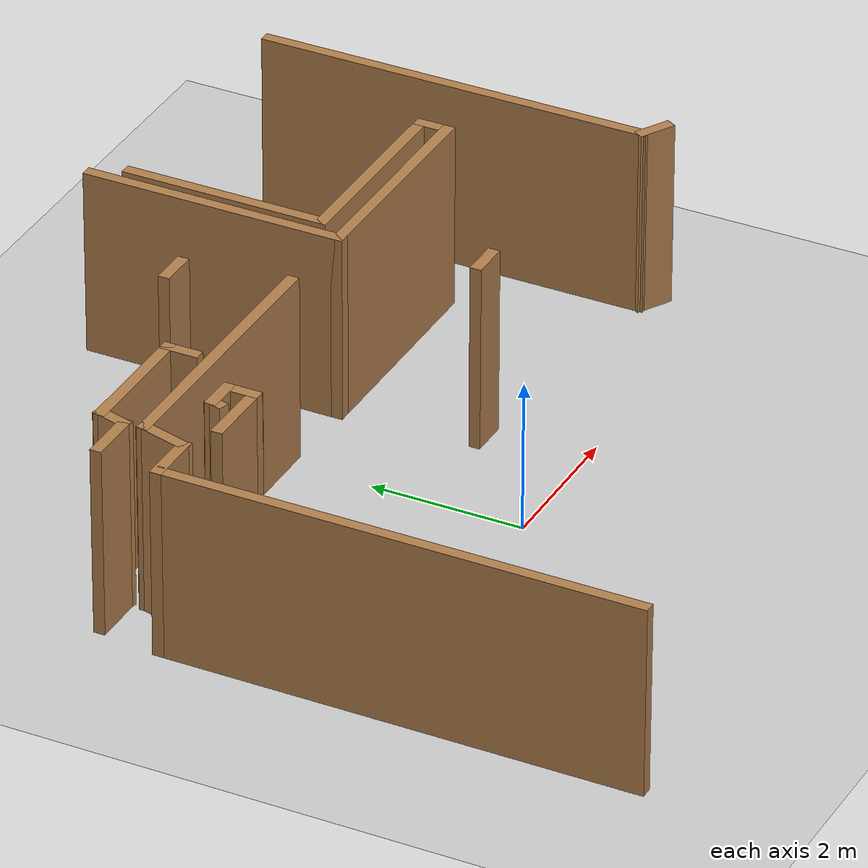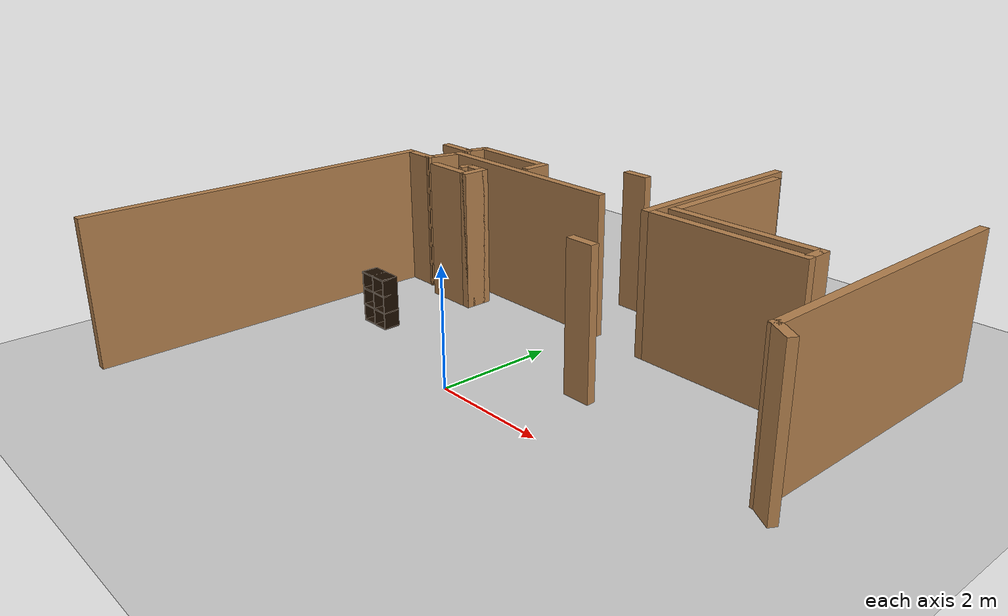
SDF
<sdf version="1.6">
 <world name="default">
  <model name="ground_plane">
   <static>1</static>
   <link name="link">
    <collision name="collision">
     <geometry><plane><normal>0 0 1</normal><size>100 100</size></plane></geometry>
     <surface><friction><ode><mu>100</mu><mu2>50</mu2></ode></friction></surface>
    </collision>
    <visual name="visual">
     <cast_shadows>0</cast_shadows>
     <geometry><plane><normal>0 0 1</normal><size>100 100</size></plane></geometry>
     <material>
      <script><uri>file://media/materials/scripts/gazebo.material</uri><name>Gazebo/Grey</name></script>
     </material>
    </visual>
   </link>
  </model>
  <model name="map_31">
   <link name="Wall_100">
    <pose>0.643586 5.04256 0 0 -0 1.5708</pose>
    <visual name="Wall_100_Visual">
     <pose>0 0 1.25 0 -0 0</pose>
     <geometry><box><size>3.5 0.15 2.5</size></box></geometry>
     <material>
      <script><uri>file://media/materials/scripts/gazebo.material</uri><name>Gazebo/Wood</name></script>
      <ambient>1 1 1 1</ambient>
      <shader type="pixel"/>
     </material>
     <meta><layer>0</layer></meta>
    </visual>
    <collision name="Wall_100_Collision">
     <pose>0 0 1.25 0 -0 0</pose>
     <geometry><box><size>3.5 0.15 2.5</size></box></geometry>
     <surface>
      <friction>
       <ode><mu>1</mu><mu2>1</mu2><fdir1>0 0 0</fdir1><slip1>0</slip1><slip2>0</slip2></ode>
       <torsional>
        <coefficient>1</coefficient>
        <patch_radius>0</patch_radius>
        <surface_radius>0</surface_radius>
        <use_patch_radius>1</use_patch_radius>
        <ode><slip>0</slip></ode>
       </torsional>
      </friction>
      <bounce><restitution_coefficient>0</restitution_coefficient><threshold>1e+06</threshold></bounce>
      <contact>
       <collide_without_contact>0</collide_without_contact>
       <collide_without_contact_bitmask>1</collide_without_contact_bitmask>
       <collide_bitmask>1</collide_bitmask>
       <ode>
        <soft_cfm>0</soft_cfm>
        <soft_erp>0.2</soft_erp>
        <kp>1e+13</kp>
        <kd>1</kd>
        <max_vel>0.01</max_vel>
        <min_depth>0</min_depth>
       </ode>
       <bullet>
        <split_impulse>1</split_impulse>
        <split_impulse_penetration_threshold>-0.01</split_impulse_penetration_threshold>
        <soft_cfm>0</soft_cfm>
        <soft_erp>0.2</soft_erp>
        <kp>1e+13</kp>
        <kd>1</kd>
       </bullet>
      </contact>
     </surface>
    </collision>
   </link>
   <link name="Wall_120">
    <pose>-0.854189 4.78949 0 0 -0 3.14159</pose>
    <visual name="Wall_120_Visual">
     <pose>0 0 1.25 0 -0 0</pose>
     <geometry><box><size>0.5 0.15 2.5</size></box></geometry>
     <material>
      <script><uri>file://media/materials/scripts/gazebo.material</uri><name>Gazebo/Wood</name></script>
      <ambient>1 1 1 1</ambient>
      <shader type="pixel"/>
     </material>
     <meta><layer>0</layer></meta>
    </visual>
    <collision name="Wall_120_Collision">
     <pose>0 0 1.25 0 -0 0</pose>
     <geometry><box><size>0.5 0.15 2.5</size></box></geometry>
     <surface>
      <friction>
       <ode><mu>1</mu><mu2>1</mu2><fdir1>0 0 0</fdir1><slip1>0</slip1><slip2>0</slip2></ode>
       <torsional>
        <coefficient>1</coefficient>
        <patch_radius>0</patch_radius>
        <surface_radius>0</surface_radius>
        <use_patch_radius>1</use_patch_radius>
        <ode><slip>0</slip></ode>
       </torsional>
      </friction>
      <bounce><restitution_coefficient>0</restitution_coefficient><threshold>1e+06</threshold></bounce>
      <contact>
       <collide_without_contact>0</collide_without_contact>
       <collide_without_contact_bitmask>1</collide_without_contact_bitmask>
       <collide_bitmask>1</collide_bitmask>
       <ode>
        <soft_cfm>0</soft_cfm>
        <soft_erp>0.2</soft_erp>
        <kp>1e+13</kp>
        <kd>1</kd>
        <max_vel>0.01</max_vel>
        <min_depth>0</min_depth>
       </ode>
       <bullet>
        <split_impulse>1</split_impulse>
        <split_impulse_penetration_threshold>-0.01</split_impulse_penetration_threshold>
        <soft_cfm>0</soft_cfm>
        <soft_erp>0.2</soft_erp>
        <kp>1e+13</kp>
        <kd>1</kd>
       </bullet>
      </contact>
     </surface>
    </collision>
   </link>
   <link name="Wall_13">
    <pose>-2.26885 3.4345 0 0 -0 3.14159</pose>
    <visual name="Wall_13_Visual">
     <pose>0 0 1.25 0 -0 0</pose>
     <geometry><box><size>3.75 0.15 2.5</size></box></geometry>
     <material>
      <script><uri>file://media/materials/scripts/gazebo.material</uri><name>Gazebo/Wood</name></script>
      <ambient>1 1 1 1</ambient>
      <shader type="pixel"/>
     </material>
     <meta><layer>0</layer></meta>
    </visual>
    <collision name="Wall_13_Collision">
     <pose>0 0 1.25 0 -0 0</pose>
     <geometry><box><size>3.75 0.15 2.5</size></box></geometry>
     <surface>
      <friction>
       <ode><mu>1</mu><mu2>1</mu2><fdir1>0 0 0</fdir1><slip1>0</slip1><slip2>0</slip2></ode>
       <torsional>
        <coefficient>1</coefficient>
        <patch_radius>0</patch_radius>
        <surface_radius>0</surface_radius>
        <use_patch_radius>1</use_patch_radius>
        <ode><slip>0</slip></ode>
       </torsional>
      </friction>
      <bounce><restitution_coefficient>0</restitution_coefficient><threshold>1e+06</threshold></bounce>
      <contact>
       <collide_without_contact>0</collide_without_contact>
       <collide_without_contact_bitmask>1</collide_without_contact_bitmask>
       <collide_bitmask>1</collide_bitmask>
       <ode>
        <soft_cfm>0</soft_cfm>
        <soft_erp>0.2</soft_erp>
        <kp>1e+13</kp>
        <kd>1</kd>
        <max_vel>0.01</max_vel>
        <min_depth>0</min_depth>
       </ode>
       <bullet>
        <split_impulse>1</split_impulse>
        <split_impulse_penetration_threshold>-0.01</split_impulse_penetration_threshold>
        <soft_cfm>0</soft_cfm>
        <soft_erp>0.2</soft_erp>
        <kp>1e+13</kp>
        <kd>1</kd>
       </bullet>
      </contact>
     </surface>
    </collision>
   </link>
   <link name="Wall_14">
    <pose>-4.1465 3.14472 0 0 0 -1.8326</pose>
    <visual name="Wall_14_Visual">
     <pose>0 0 1.25 0 -0 0</pose>
     <geometry><box><size>0.75 0.15 2.5</size></box></geometry>
     <material>
      <script><uri>file://media/materials/scripts/gazebo.material</uri><name>Gazebo/Wood</name></script>
      <ambient>1 1 1 1</ambient>
      <shader type="pixel"/>
     </material>
     <meta><layer>0</layer></meta>
    </visual>
    <collision name="Wall_14_Collision">
     <pose>0 0 1.25 0 -0 0</pose>
     <geometry><box><size>0.75 0.15 2.5</size></box></geometry>
     <surface>
      <friction>
       <ode><mu>1</mu><mu2>1</mu2><fdir1>0 0 0</fdir1><slip1>0</slip1><slip2>0</slip2></ode>
       <torsional>
        <coefficient>1</coefficient>
        <patch_radius>0</patch_radius>
        <surface_radius>0</surface_radius>
        <use_patch_radius>1</use_patch_radius>
        <ode><slip>0</slip></ode>
       </torsional>
      </friction>
      <bounce><restitution_coefficient>0</restitution_coefficient><threshold>1e+06</threshold></bounce>
      <contact>
       <collide_without_contact>0</collide_without_contact>
       <collide_without_contact_bitmask>1</collide_without_contact_bitmask>
       <collide_bitmask>1</collide_bitmask>
       <ode>
        <soft_cfm>0</soft_cfm>
        <soft_erp>0.2</soft_erp>
        <kp>1e+13</kp>
        <kd>1</kd>
        <max_vel>0.01</max_vel>
        <min_depth>0</min_depth>
       </ode>
       <bullet>
        <split_impulse>1</split_impulse>
        <split_impulse_penetration_threshold>-0.01</split_impulse_penetration_threshold>
        <soft_cfm>0</soft_cfm>
        <soft_erp>0.2</soft_erp>
        <kp>1e+13</kp>
        <kd>1</kd>
       </bullet>
      </contact>
     </surface>
    </collision>
   </link>
   <link name="Wall_141">
    <pose>-3.322 2.64133 0 0 -0 0</pose>
    <visual name="Wall_141_Visual">
     <pose>0 0 1.25 0 -0 0</pose>
     <geometry><box><size>1 0.15 2.5</size></box></geometry>
     <material>
      <script><uri>file://media/materials/scripts/gazebo.material</uri><name>Gazebo/Wood</name></script>
      <ambient>1 1 1 1</ambient>
      <shader type="pixel"/>
     </material>
     <meta><layer>0</layer></meta>
    </visual>
    <collision name="Wall_141_Collision">
     <pose>0 0 1.25 0 -0 0</pose>
     <geometry><box><size>1 0.15 2.5</size></box></geometry>
     <surface>
      <friction>
       <ode><mu>1</mu><mu2>1</mu2><fdir1>0 0 0</fdir1><slip1>0</slip1><slip2>0</slip2></ode>
       <torsional>
        <coefficient>1</coefficient>
        <patch_radius>0</patch_radius>
        <surface_radius>0</surface_radius>
        <use_patch_radius>1</use_patch_radius>
        <ode><slip>0</slip></ode>
       </torsional>
      </friction>
      <bounce><restitution_coefficient>0</restitution_coefficient><threshold>1e+06</threshold></bounce>
      <contact>
       <collide_without_contact>0</collide_without_contact>
       <collide_without_contact_bitmask>1</collide_without_contact_bitmask>
       <collide_bitmask>1</collide_bitmask>
       <ode>
        <soft_cfm>0</soft_cfm>
        <soft_erp>0.2</soft_erp>
        <kp>1e+13</kp>
        <kd>1</kd>
        <max_vel>0.01</max_vel>
        <min_depth>0</min_depth>
       </ode>
       <bullet>
        <split_impulse>1</split_impulse>
        <split_impulse_penetration_threshold>-0.01</split_impulse_penetration_threshold>
        <soft_cfm>0</soft_cfm>
        <soft_erp>0.2</soft_erp>
        <kp>1e+13</kp>
        <kd>1</kd>
       </bullet>
      </contact>
     </surface>
    </collision>
   </link>
   <link name="Wall_142">
    <pose>-2.897 2.81633 0 0 -0 1.5708</pose>
    <visual name="Wall_142_Visual">
     <pose>0 0 1.25 0 -0 0</pose>
     <geometry><box><size>0.5 0.15 2.5</size></box></geometry>
     <material>
      <script><uri>file://media/materials/scripts/gazebo.material</uri><name>Gazebo/Wood</name></script>
      <ambient>1 1 1 1</ambient>
      <shader type="pixel"/>
     </material>
     <meta><layer>0</layer></meta>
    </visual>
    <collision name="Wall_142_Collision">
     <pose>0 0 1.25 0 -0 0</pose>
     <geometry><box><size>0.5 0.15 2.5</size></box></geometry>
     <surface>
      <friction>
       <ode><mu>1</mu><mu2>1</mu2><fdir1>0 0 0</fdir1><slip1>0</slip1><slip2>0</slip2></ode>
       <torsional>
        <coefficient>1</coefficient>
        <patch_radius>0</patch_radius>
        <surface_radius>0</surface_radius>
        <use_patch_radius>1</use_patch_radius>
        <ode><slip>0</slip></ode>
       </torsional>
      </friction>
      <bounce><restitution_coefficient>0</restitution_coefficient><threshold>1e+06</threshold></bounce>
      <contact>
       <collide_without_contact>0</collide_without_contact>
       <collide_without_contact_bitmask>1</collide_without_contact_bitmask>
       <collide_bitmask>1</collide_bitmask>
       <ode>
        <soft_cfm>0</soft_cfm>
        <soft_erp>0.2</soft_erp>
        <kp>1e+13</kp>
        <kd>1</kd>
        <max_vel>0.01</max_vel>
        <min_depth>0</min_depth>
       </ode>
       <bullet>
        <split_impulse>1</split_impulse>
        <split_impulse_penetration_threshold>-0.01</split_impulse_penetration_threshold>
        <soft_cfm>0</soft_cfm>
        <soft_erp>0.2</soft_erp>
        <kp>1e+13</kp>
        <kd>1</kd>
       </bullet>
      </contact>
     </surface>
    </collision>
   </link>
   <link name="Wall_143">
    <pose>-3.072 2.99133 0 0 -0 3.14159</pose>
    <visual name="Wall_143_Visual">
     <pose>0 0 1.25 0 -0 0</pose>
     <geometry><box><size>0.5 0.15 2.5</size></box></geometry>
     <material>
      <script><uri>file://media/materials/scripts/gazebo.material</uri><name>Gazebo/Wood</name></script>
      <ambient>1 1 1 1</ambient>
      <shader type="pixel"/>
     </material>
     <meta><layer>0</layer></meta>
    </visual>
    <collision name="Wall_143_Collision">
     <pose>0 0 1.25 0 -0 0</pose>
     <geometry><box><size>0.5 0.15 2.5</size></box></geometry>
     <surface>
      <friction>
       <ode><mu>1</mu><mu2>1</mu2><fdir1>0 0 0</fdir1><slip1>0</slip1><slip2>0</slip2></ode>
       <torsional>
        <coefficient>1</coefficient>
        <patch_radius>0</patch_radius>
        <surface_radius>0</surface_radius>
        <use_patch_radius>1</use_patch_radius>
        <ode><slip>0</slip></ode>
       </torsional>
      </friction>
      <bounce><restitution_coefficient>0</restitution_coefficient><threshold>1e+06</threshold></bounce>
      <contact>
       <collide_without_contact>0</collide_without_contact>
       <collide_without_contact_bitmask>1</collide_without_contact_bitmask>
       <collide_bitmask>1</collide_bitmask>
       <ode>
        <soft_cfm>0</soft_cfm>
        <soft_erp>0.2</soft_erp>
        <kp>1e+13</kp>
        <kd>1</kd>
        <max_vel>0.01</max_vel>
        <min_depth>0</min_depth>
       </ode>
       <bullet>
        <split_impulse>1</split_impulse>
        <split_impulse_penetration_threshold>-0.01</split_impulse_penetration_threshold>
        <soft_cfm>0</soft_cfm>
        <soft_erp>0.2</soft_erp>
        <kp>1e+13</kp>
        <kd>1</kd>
       </bullet>
      </contact>
     </surface>
    </collision>
   </link>
   <link name="Wall_144">
    <pose>-3.25994 2.94303 0 0 0 -1.8326</pose>
    <visual name="Wall_144_Visual">
     <pose>0 0 1.25 0 -0 0</pose>
     <geometry><box><size>0.25 0.15 2.5</size></box></geometry>
     <material>
      <script><uri>file://media/materials/scripts/gazebo.material</uri><name>Gazebo/Wood</name></script>
      <ambient>1 1 1 1</ambient>
      <shader type="pixel"/>
     </material>
     <meta><layer>0</layer></meta>
    </visual>
    <collision name="Wall_144_Collision">
     <pose>0 0 1.25 0 -0 0</pose>
     <geometry><box><size>0.25 0.15 2.5</size></box></geometry>
     <surface>
      <friction>
       <ode><mu>1</mu><mu2>1</mu2><fdir1>0 0 0</fdir1><slip1>0</slip1><slip2>0</slip2></ode>
       <torsional>
        <coefficient>1</coefficient>
        <patch_radius>0</patch_radius>
        <surface_radius>0</surface_radius>
        <use_patch_radius>1</use_patch_radius>
        <ode><slip>0</slip></ode>
       </torsional>
      </friction>
      <bounce><restitution_coefficient>0</restitution_coefficient><threshold>1e+06</threshold></bounce>
      <contact>
       <collide_without_contact>0</collide_without_contact>
       <collide_without_contact_bitmask>1</collide_without_contact_bitmask>
       <collide_bitmask>1</collide_bitmask>
       <ode>
        <soft_cfm>0</soft_cfm>
        <soft_erp>0.2</soft_erp>
        <kp>1e+13</kp>
        <kd>1</kd>
        <max_vel>0.01</max_vel>
        <min_depth>0</min_depth>
       </ode>
       <bullet>
        <split_impulse>1</split_impulse>
        <split_impulse_penetration_threshold>-0.01</split_impulse_penetration_threshold>
        <soft_cfm>0</soft_cfm>
        <soft_erp>0.2</soft_erp>
        <kp>1e+13</kp>
        <kd>1</kd>
       </bullet>
      </contact>
     </surface>
    </collision>
   </link>
   <link name="Wall_17">
    <pose>-4.52415 2.85494 0 0 -0 3.14159</pose>
    <visual name="Wall_17_Visual">
     <pose>0 0 1.25 0 -0 0</pose>
     <geometry><box><size>0.75 0.15 2.5</size></box></geometry>
     <material>
      <script><uri>file://media/materials/scripts/gazebo.material</uri><name>Gazebo/Wood</name></script>
      <ambient>1 1 1 1</ambient>
      <shader type="pixel"/>
     </material>
     <meta><layer>0</layer></meta>
    </visual>
    <collision name="Wall_17_Collision">
     <pose>0 0 1.25 0 -0 0</pose>
     <geometry><box><size>0.75 0.15 2.5</size></box></geometry>
     <surface>
      <friction>
       <ode><mu>1</mu><mu2>1</mu2><fdir1>0 0 0</fdir1><slip1>0</slip1><slip2>0</slip2></ode>
       <torsional>
        <coefficient>1</coefficient>
        <patch_radius>0</patch_radius>
        <surface_radius>0</surface_radius>
        <use_patch_radius>1</use_patch_radius>
        <ode><slip>0</slip></ode>
       </torsional>
      </friction>
      <bounce><restitution_coefficient>0</restitution_coefficient><threshold>1e+06</threshold></bounce>
      <contact>
       <collide_without_contact>0</collide_without_contact>
       <collide_without_contact_bitmask>1</collide_without_contact_bitmask>
       <collide_bitmask>1</collide_bitmask>
       <ode>
        <soft_cfm>0</soft_cfm>
        <soft_erp>0.2</soft_erp>
        <kp>1e+13</kp>
        <kd>1</kd>
        <max_vel>0.01</max_vel>
        <min_depth>0</min_depth>
       </ode>
       <bullet>
        <split_impulse>1</split_impulse>
        <split_impulse_penetration_threshold>-0.01</split_impulse_penetration_threshold>
        <soft_cfm>0</soft_cfm>
        <soft_erp>0.2</soft_erp>
        <kp>1e+13</kp>
        <kd>1</kd>
       </bullet>
      </contact>
     </surface>
    </collision>
   </link>
   <link name="Wall_18">
    <pose>-4.82415 -0.195058 0 0 0 -1.5708</pose>
    <visual name="Wall_18_Visual">
     <pose>0 0 1.25 0 -0 0</pose>
     <geometry><box><size>6.25 0.15 2.5</size></box></geometry>
     <material>
      <script><uri>file://media/materials/scripts/gazebo.material</uri><name>Gazebo/Wood</name></script>
      <ambient>1 1 1 1</ambient>
      <shader type="pixel"/>
     </material>
     <meta><layer>0</layer></meta>
    </visual>
    <collision name="Wall_18_Collision">
     <pose>0 0 1.25 0 -0 0</pose>
     <geometry><box><size>6.25 0.15 2.5</size></box></geometry>
     <surface>
      <friction>
       <ode><mu>1</mu><mu2>1</mu2><fdir1>0 0 0</fdir1><slip1>0</slip1><slip2>0</slip2></ode>
       <torsional>
        <coefficient>1</coefficient>
        <patch_radius>0</patch_radius>
        <surface_radius>0</surface_radius>
        <use_patch_radius>1</use_patch_radius>
        <ode><slip>0</slip></ode>
       </torsional>
      </friction>
      <bounce><restitution_coefficient>0</restitution_coefficient><threshold>1e+06</threshold></bounce>
      <contact>
       <collide_without_contact>0</collide_without_contact>
       <collide_without_contact_bitmask>1</collide_without_contact_bitmask>
       <collide_bitmask>1</collide_bitmask>
       <ode>
        <soft_cfm>0</soft_cfm>
        <soft_erp>0.2</soft_erp>
        <kp>1e+13</kp>
        <kd>1</kd>
        <max_vel>0.01</max_vel>
        <min_depth>0</min_depth>
       </ode>
       <bullet>
        <split_impulse>1</split_impulse>
        <split_impulse_penetration_threshold>-0.01</split_impulse_penetration_threshold>
        <soft_cfm>0</soft_cfm>
        <soft_erp>0.2</soft_erp>
        <kp>1e+13</kp>
        <kd>1</kd>
       </bullet>
      </contact>
     </surface>
    </collision>
   </link>
   <link name="Wall_6">
    <pose>-4.42196 3.68134 0 0 -0 0</pose>
    <visual name="Wall_6_Visual">
     <pose>0 0 1.25 0 -0 0</pose>
     <geometry><box><size>0.75 0.15 2.5</size></box></geometry>
     <material>
      <script><uri>file://media/materials/scripts/gazebo.material</uri><name>Gazebo/Wood</name></script>
      <ambient>1 1 1 1</ambient>
      <shader type="pixel"/>
     </material>
     <meta><layer>0</layer></meta>
    </visual>
    <collision name="Wall_6_Collision">
     <pose>0 0 1.25 0 -0 0</pose>
     <geometry><box><size>0.75 0.15 2.5</size></box></geometry>
     <surface>
      <friction>
       <ode><mu>1</mu><mu2>1</mu2><fdir1>0 0 0</fdir1><slip1>0</slip1><slip2>0</slip2></ode>
       <torsional>
        <coefficient>1</coefficient>
        <patch_radius>0</patch_radius>
        <surface_radius>0</surface_radius>
        <use_patch_radius>1</use_patch_radius>
        <ode><slip>0</slip></ode>
       </torsional>
      </friction>
      <bounce><restitution_coefficient>0</restitution_coefficient><threshold>1e+06</threshold></bounce>
      <contact>
       <collide_without_contact>0</collide_without_contact>
       <collide_without_contact_bitmask>1</collide_without_contact_bitmask>
       <collide_bitmask>1</collide_bitmask>
       <ode>
        <soft_cfm>0</soft_cfm>
        <soft_erp>0.2</soft_erp>
        <kp>1e+13</kp>
        <kd>1</kd>
        <max_vel>0.01</max_vel>
        <min_depth>0</min_depth>
       </ode>
       <bullet>
        <split_impulse>1</split_impulse>
        <split_impulse_penetration_threshold>-0.01</split_impulse_penetration_threshold>
        <soft_cfm>0</soft_cfm>
        <soft_erp>0.2</soft_erp>
        <kp>1e+13</kp>
        <kd>1</kd>
       </bullet>
      </contact>
     </surface>
    </collision>
   </link>
   <link name="Wall_7">
    <pose>-4.07667 3.85038 0 0 -0 1.309</pose>
    <visual name="Wall_7_Visual">
     <pose>0 0 1.25 0 -0 0</pose>
     <geometry><box><size>0.5 0.15 2.5</size></box></geometry>
     <material>
      <script><uri>file://media/materials/scripts/gazebo.material</uri><name>Gazebo/Wood</name></script>
      <ambient>1 1 1 1</ambient>
      <shader type="pixel"/>
     </material>
     <meta><layer>0</layer></meta>
    </visual>
    <collision name="Wall_7_Collision">
     <pose>0 0 1.25 0 -0 0</pose>
     <geometry><box><size>0.5 0.15 2.5</size></box></geometry>
     <surface>
      <friction>
       <ode><mu>1</mu><mu2>1</mu2><fdir1>0 0 0</fdir1><slip1>0</slip1><slip2>0</slip2></ode>
       <torsional>
        <coefficient>1</coefficient>
        <patch_radius>0</patch_radius>
        <surface_radius>0</surface_radius>
        <use_patch_radius>1</use_patch_radius>
        <ode><slip>0</slip></ode>
       </torsional>
      </friction>
      <bounce><restitution_coefficient>0</restitution_coefficient><threshold>1e+06</threshold></bounce>
      <contact>
       <collide_without_contact>0</collide_without_contact>
       <collide_without_contact_bitmask>1</collide_without_contact_bitmask>
       <collide_bitmask>1</collide_bitmask>
       <ode>
        <soft_cfm>0</soft_cfm>
        <soft_erp>0.2</soft_erp>
        <kp>1e+13</kp>
        <kd>1</kd>
        <max_vel>0.01</max_vel>
        <min_depth>0</min_depth>
       </ode>
       <bullet>
        <split_impulse>1</split_impulse>
        <split_impulse_penetration_threshold>-0.01</split_impulse_penetration_threshold>
        <soft_cfm>0</soft_cfm>
        <soft_erp>0.2</soft_erp>
        <kp>1e+13</kp>
        <kd>1</kd>
       </bullet>
      </contact>
     </surface>
    </collision>
   </link>
   <link name="Wall_8">
    <pose>-3.23137 4.01941 0 0 -0 0</pose>
    <visual name="Wall_8_Visual">
     <pose>0 0 1.25 0 -0 0</pose>
     <geometry><box><size>1.75 0.15 2.5</size></box></geometry>
     <material>
      <script><uri>file://media/materials/scripts/gazebo.material</uri><name>Gazebo/Wood</name></script>
      <ambient>1 1 1 1</ambient>
      <shader type="pixel"/>
     </material>
     <meta><layer>0</layer></meta>
    </visual>
    <collision name="Wall_8_Collision">
     <pose>0 0 1.25 0 -0 0</pose>
     <geometry><box><size>1.75 0.15 2.5</size></box></geometry>
     <surface>
      <friction>
       <ode><mu>1</mu><mu2>1</mu2><fdir1>0 0 0</fdir1><slip1>0</slip1><slip2>0</slip2></ode>
       <torsional>
        <coefficient>1</coefficient>
        <patch_radius>0</patch_radius>
        <surface_radius>0</surface_radius>
        <use_patch_radius>1</use_patch_radius>
        <ode><slip>0</slip></ode>
       </torsional>
      </friction>
      <bounce><restitution_coefficient>0</restitution_coefficient><threshold>1e+06</threshold></bounce>
      <contact>
       <collide_without_contact>0</collide_without_contact>
       <collide_without_contact_bitmask>1</collide_without_contact_bitmask>
       <collide_bitmask>1</collide_bitmask>
       <ode>
        <soft_cfm>0</soft_cfm>
        <soft_erp>0.2</soft_erp>
        <kp>1e+13</kp>
        <kd>1</kd>
        <max_vel>0.01</max_vel>
        <min_depth>0</min_depth>
       </ode>
       <bullet>
        <split_impulse>1</split_impulse>
        <split_impulse_penetration_threshold>-0.01</split_impulse_penetration_threshold>
        <soft_cfm>0</soft_cfm>
        <soft_erp>0.2</soft_erp>
        <kp>1e+13</kp>
        <kd>1</kd>
       </bullet>
      </contact>
     </surface>
    </collision>
   </link>
   <link name="Wall_83">
    <pose>0.981109 1.60448 0 0 -0 0</pose>
    <visual name="Wall_83_Visual">
     <pose>0 0 1.25 0 -0 0</pose>
     <geometry><box><size>0.5 0.15 2.5</size></box></geometry>
     <material>
      <script><uri>file://media/materials/scripts/gazebo.material</uri><name>Gazebo/Wood</name></script>
      <ambient>1 1 1 1</ambient>
      <shader type="pixel"/>
     </material>
     <meta><layer>0</layer></meta>
    </visual>
    <collision name="Wall_83_Collision">
     <pose>0 0 1.25 0 -0 0</pose>
     <geometry><box><size>0.5 0.15 2.5</size></box></geometry>
     <surface>
      <friction>
       <ode><mu>1</mu><mu2>1</mu2><fdir1>0 0 0</fdir1><slip1>0</slip1><slip2>0</slip2></ode>
       <torsional>
        <coefficient>1</coefficient>
        <patch_radius>0</patch_radius>
        <surface_radius>0</surface_radius>
        <use_patch_radius>1</use_patch_radius>
        <ode><slip>0</slip></ode>
       </torsional>
      </friction>
      <bounce><restitution_coefficient>0</restitution_coefficient><threshold>1e+06</threshold></bounce>
      <contact>
       <collide_without_contact>0</collide_without_contact>
       <collide_without_contact_bitmask>1</collide_without_contact_bitmask>
       <collide_bitmask>1</collide_bitmask>
       <ode>
        <soft_cfm>0</soft_cfm>
        <soft_erp>0.2</soft_erp>
        <kp>1e+13</kp>
        <kd>1</kd>
        <max_vel>0.01</max_vel>
        <min_depth>0</min_depth>
       </ode>
       <bullet>
        <split_impulse>1</split_impulse>
        <split_impulse_penetration_threshold>-0.01</split_impulse_penetration_threshold>
        <soft_cfm>0</soft_cfm>
        <soft_erp>0.2</soft_erp>
        <kp>1e+13</kp>
        <kd>1</kd>
       </bullet>
      </contact>
     </surface>
    </collision>
   </link>
   <link name="Wall_9">
    <pose>-2.43137 3.84441 0 0 0 -1.5708</pose>
    <visual name="Wall_9_Visual">
     <pose>0 0 1.25 0 -0 0</pose>
     <geometry><box><size>0.5 0.15 2.5</size></box></geometry>
     <material>
      <script><uri>file://media/materials/scripts/gazebo.material</uri><name>Gazebo/Wood</name></script>
      <ambient>1 1 1 1</ambient>
      <shader type="pixel"/>
     </material>
     <meta><layer>0</layer></meta>
    </visual>
    <collision name="Wall_9_Collision">
     <pose>0 0 1.25 0 -0 0</pose>
     <geometry><box><size>0.5 0.15 2.5</size></box></geometry>
     <surface>
      <friction>
       <ode><mu>1</mu><mu2>1</mu2><fdir1>0 0 0</fdir1><slip1>0</slip1><slip2>0</slip2></ode>
       <torsional>
        <coefficient>1</coefficient>
        <patch_radius>0</patch_radius>
        <surface_radius>0</surface_radius>
        <use_patch_radius>1</use_patch_radius>
        <ode><slip>0</slip></ode>
       </torsional>
      </friction>
      <bounce><restitution_coefficient>0</restitution_coefficient><threshold>1e+06</threshold></bounce>
      <contact>
       <collide_without_contact>0</collide_without_contact>
       <collide_without_contact_bitmask>1</collide_without_contact_bitmask>
       <collide_bitmask>1</collide_bitmask>
       <ode>
        <soft_cfm>0</soft_cfm>
        <soft_erp>0.2</soft_erp>
        <kp>1e+13</kp>
        <kd>1</kd>
        <max_vel>0.01</max_vel>
        <min_depth>0</min_depth>
       </ode>
       <bullet>
        <split_impulse>1</split_impulse>
        <split_impulse_penetration_threshold>-0.01</split_impulse_penetration_threshold>
        <soft_cfm>0</soft_cfm>
        <soft_erp>0.2</soft_erp>
        <kp>1e+13</kp>
        <kd>1</kd>
       </bullet>
      </contact>
     </surface>
    </collision>
   </link>
   <link name="Wall_93">
    <pose>4.64514 1.13006 0 0 -0 2.61799</pose>
    <visual name="Wall_93_Visual">
     <pose>0 0 1.25 0 -0 0</pose>
     <geometry><box><size>0.5 0.15 2.5</size></box></geometry>
     <material>
      <script><uri>file://media/materials/scripts/gazebo.material</uri><name>Gazebo/Wood</name></script>
      <ambient>1 1 1 1</ambient>
      <shader type="pixel"/>
     </material>
     <meta><layer>0</layer></meta>
    </visual>
    <collision name="Wall_93_Collision">
     <pose>0 0 1.25 0 -0 0</pose>
     <geometry><box><size>0.5 0.15 2.5</size></box></geometry>
     <surface>
      <friction>
       <ode><mu>1</mu><mu2>1</mu2><fdir1>0 0 0</fdir1><slip1>0</slip1><slip2>0</slip2></ode>
       <torsional>
        <coefficient>1</coefficient>
        <patch_radius>0</patch_radius>
        <surface_radius>0</surface_radius>
        <use_patch_radius>1</use_patch_radius>
        <ode><slip>0</slip></ode>
       </torsional>
      </friction>
      <bounce><restitution_coefficient>0</restitution_coefficient><threshold>1e+06</threshold></bounce>
      <contact>
       <collide_without_contact>0</collide_without_contact>
       <collide_without_contact_bitmask>1</collide_without_contact_bitmask>
       <collide_bitmask>1</collide_bitmask>
       <ode>
        <soft_cfm>0</soft_cfm>
        <soft_erp>0.2</soft_erp>
        <kp>1e+13</kp>
        <kd>1</kd>
        <max_vel>0.01</max_vel>
        <min_depth>0</min_depth>
       </ode>
       <bullet>
        <split_impulse>1</split_impulse>
        <split_impulse_penetration_threshold>-0.01</split_impulse_penetration_threshold>
        <soft_cfm>0</soft_cfm>
        <soft_erp>0.2</soft_erp>
        <kp>1e+13</kp>
        <kd>1</kd>
       </bullet>
      </contact>
     </surface>
    </collision>
   </link>
   <link name="Wall_94">
    <pose>4.49359 3.76756 0 0 -0 1.5708</pose>
    <visual name="Wall_94_Visual">
     <pose>0 0 1.25 0 -0 0</pose>
     <geometry><box><size>5.25 0.15 2.5</size></box></geometry>
     <material>
      <script><uri>file://media/materials/scripts/gazebo.material</uri><name>Gazebo/Wood</name></script>
      <ambient>1 1 1 1</ambient>
      <shader type="pixel"/>
     </material>
     <meta><layer>0</layer></meta>
    </visual>
    <collision name="Wall_94_Collision">
     <pose>0 0 1.25 0 -0 0</pose>
     <geometry><box><size>5.25 0.15 2.5</size></box></geometry>
     <surface>
      <friction>
       <ode><mu>1</mu><mu2>1</mu2><fdir1>0 0 0</fdir1><slip1>0</slip1><slip2>0</slip2></ode>
       <torsional>
        <coefficient>1</coefficient>
        <patch_radius>0</patch_radius>
        <surface_radius>0</surface_radius>
        <use_patch_radius>1</use_patch_radius>
        <ode><slip>0</slip></ode>
       </torsional>
      </friction>
      <bounce><restitution_coefficient>0</restitution_coefficient><threshold>1e+06</threshold></bounce>
      <contact>
       <collide_without_contact>0</collide_without_contact>
       <collide_without_contact_bitmask>1</collide_without_contact_bitmask>
       <collide_bitmask>1</collide_bitmask>
       <ode>
        <soft_cfm>0</soft_cfm>
        <soft_erp>0.2</soft_erp>
        <kp>1e+13</kp>
        <kd>1</kd>
        <max_vel>0.01</max_vel>
        <min_depth>0</min_depth>
       </ode>
       <bullet>
        <split_impulse>1</split_impulse>
        <split_impulse_penetration_threshold>-0.01</split_impulse_penetration_threshold>
        <soft_cfm>0</soft_cfm>
        <soft_erp>0.2</soft_erp>
        <kp>1e+13</kp>
        <kd>1</kd>
       </bullet>
      </contact>
     </surface>
    </collision>
   </link>
   <link name="Wall_96">
    <pose>0.893586 5.01756 0 0 0 -1.5708</pose>
    <visual name="Wall_96_Visual">
     <pose>0 0 1.25 0 -0 0</pose>
     <geometry><box><size>2.75 0.15 2.5</size></box></geometry>
     <material>
      <script><uri>file://media/materials/scripts/gazebo.material</uri><name>Gazebo/Wood</name></script>
      <ambient>1 1 1 1</ambient>
      <shader type="pixel"/>
     </material>
     <meta><layer>0</layer></meta>
    </visual>
    <collision name="Wall_96_Collision">
     <pose>0 0 1.25 0 -0 0</pose>
     <geometry><box><size>2.75 0.15 2.5</size></box></geometry>
     <surface>
      <friction>
       <ode><mu>1</mu><mu2>1</mu2><fdir1>0 0 0</fdir1><slip1>0</slip1><slip2>0</slip2></ode>
       <torsional>
        <coefficient>1</coefficient>
        <patch_radius>0</patch_radius>
        <surface_radius>0</surface_radius>
        <use_patch_radius>1</use_patch_radius>
        <ode><slip>0</slip></ode>
       </torsional>
      </friction>
      <bounce><restitution_coefficient>0</restitution_coefficient><threshold>1e+06</threshold></bounce>
      <contact>
       <collide_without_contact>0</collide_without_contact>
       <collide_without_contact_bitmask>1</collide_without_contact_bitmask>
       <collide_bitmask>1</collide_bitmask>
       <ode>
        <soft_cfm>0</soft_cfm>
        <soft_erp>0.2</soft_erp>
        <kp>1e+13</kp>
        <kd>1</kd>
        <max_vel>0.01</max_vel>
        <min_depth>0</min_depth>
       </ode>
       <bullet>
        <split_impulse>1</split_impulse>
        <split_impulse_penetration_threshold>-0.01</split_impulse_penetration_threshold>
        <soft_cfm>0</soft_cfm>
        <soft_erp>0.2</soft_erp>
        <kp>1e+13</kp>
        <kd>1</kd>
       </bullet>
      </contact>
     </surface>
    </collision>
   </link>
   <link name="Wall_97">
    <pose>2.19359 3.71756 0 0 -0 0</pose>
    <visual name="Wall_97_Visual">
     <pose>0 0 1.25 0 -0 0</pose>
     <geometry><box><size>2.75 0.15 2.5</size></box></geometry>
     <material>
      <script><uri>file://media/materials/scripts/gazebo.material</uri><name>Gazebo/Wood</name></script>
      <ambient>1 1 1 1</ambient>
      <shader type="pixel"/>
     </material>
     <meta><layer>0</layer></meta>
    </visual>
    <collision name="Wall_97_Collision">
     <pose>0 0 1.25 0 -0 0</pose>
     <geometry><box><size>2.75 0.15 2.5</size></box></geometry>
     <surface>
      <friction>
       <ode><mu>1</mu><mu2>1</mu2><fdir1>0 0 0</fdir1><slip1>0</slip1><slip2>0</slip2></ode>
       <torsional>
        <coefficient>1</coefficient>
        <patch_radius>0</patch_radius>
        <surface_radius>0</surface_radius>
        <use_patch_radius>1</use_patch_radius>
        <ode><slip>0</slip></ode>
       </torsional>
      </friction>
      <bounce><restitution_coefficient>0</restitution_coefficient><threshold>1e+06</threshold></bounce>
      <contact>
       <collide_without_contact>0</collide_without_contact>
       <collide_without_contact_bitmask>1</collide_without_contact_bitmask>
       <collide_bitmask>1</collide_bitmask>
       <ode>
        <soft_cfm>0</soft_cfm>
        <soft_erp>0.2</soft_erp>
        <kp>1e+13</kp>
        <kd>1</kd>
        <max_vel>0.01</max_vel>
        <min_depth>0</min_depth>
       </ode>
       <bullet>
        <split_impulse>1</split_impulse>
        <split_impulse_penetration_threshold>-0.01</split_impulse_penetration_threshold>
        <soft_cfm>0</soft_cfm>
        <soft_erp>0.2</soft_erp>
        <kp>1e+13</kp>
        <kd>1</kd>
       </bullet>
      </contact>
     </surface>
    </collision>
   </link>
   <link name="Wall_98">
    <pose>3.49359 3.54256 0 0 0 -1.5708</pose>
    <visual name="Wall_98_Visual">
     <pose>0 0 1.25 0 -0 0</pose>
     <geometry><box><size>0.5 0.15 2.5</size></box></geometry>
     <material>
      <script><uri>file://media/materials/scripts/gazebo.material</uri><name>Gazebo/Wood</name></script>
      <ambient>1 1 1 1</ambient>
      <shader type="pixel"/>
     </material>
     <meta><layer>0</layer></meta>
    </visual>
    <collision name="Wall_98_Collision">
     <pose>0 0 1.25 0 -0 0</pose>
     <geometry><box><size>0.5 0.15 2.5</size></box></geometry>
     <surface>
      <friction>
       <ode><mu>1</mu><mu2>1</mu2><fdir1>0 0 0</fdir1><slip1>0</slip1><slip2>0</slip2></ode>
       <torsional>
        <coefficient>1</coefficient>
        <patch_radius>0</patch_radius>
        <surface_radius>0</surface_radius>
        <use_patch_radius>1</use_patch_radius>
        <ode><slip>0</slip></ode>
       </torsional>
      </friction>
      <bounce><restitution_coefficient>0</restitution_coefficient><threshold>1e+06</threshold></bounce>
      <contact>
       <collide_without_contact>0</collide_without_contact>
       <collide_without_contact_bitmask>1</collide_without_contact_bitmask>
       <collide_bitmask>1</collide_bitmask>
       <ode>
        <soft_cfm>0</soft_cfm>
        <soft_erp>0.2</soft_erp>
        <kp>1e+13</kp>
        <kd>1</kd>
        <max_vel>0.01</max_vel>
        <min_depth>0</min_depth>
       </ode>
       <bullet>
        <split_impulse>1</split_impulse>
        <split_impulse_penetration_threshold>-0.01</split_impulse_penetration_threshold>
        <soft_cfm>0</soft_cfm>
        <soft_erp>0.2</soft_erp>
        <kp>1e+13</kp>
        <kd>1</kd>
       </bullet>
      </contact>
     </surface>
    </collision>
   </link>
   <link name="Wall_99">
    <pose>2.06859 3.36756 0 0 -0 3.14159</pose>
    <visual name="Wall_99_Visual">
     <pose>0 0 1.25 0 -0 0</pose>
     <geometry><box><size>3 0.15 2.5</size></box></geometry>
     <material>
      <script><uri>file://media/materials/scripts/gazebo.material</uri><name>Gazebo/Wood</name></script>
      <ambient>1 1 1 1</ambient>
      <shader type="pixel"/>
     </material>
     <meta><layer>0</layer></meta>
    </visual>
    <collision name="Wall_99_Collision">
     <pose>0 0 1.25 0 -0 0</pose>
     <geometry><box><size>3 0.15 2.5</size></box></geometry>
     <surface>
      <friction>
       <ode><mu>1</mu><mu2>1</mu2><fdir1>0 0 0</fdir1><slip1>0</slip1><slip2>0</slip2></ode>
       <torsional>
        <coefficient>1</coefficient>
        <patch_radius>0</patch_radius>
        <surface_radius>0</surface_radius>
        <use_patch_radius>1</use_patch_radius>
        <ode><slip>0</slip></ode>
       </torsional>
      </friction>
      <bounce><restitution_coefficient>0</restitution_coefficient><threshold>1e+06</threshold></bounce>
      <contact>
       <collide_without_contact>0</collide_without_contact>
       <collide_without_contact_bitmask>1</collide_without_contact_bitmask>
       <collide_bitmask>1</collide_bitmask>
       <ode>
        <soft_cfm>0</soft_cfm>
        <soft_erp>0.2</soft_erp>
        <kp>1e+13</kp>
        <kd>1</kd>
        <max_vel>0.01</max_vel>
        <min_depth>0</min_depth>
       </ode>
       <bullet>
        <split_impulse>1</split_impulse>
        <split_impulse_penetration_threshold>-0.01</split_impulse_penetration_threshold>
        <soft_cfm>0</soft_cfm>
        <soft_erp>0.2</soft_erp>
        <kp>1e+13</kp>
        <kd>1</kd>
       </bullet>
      </contact>
     </surface>
    </collision>
   </link>
   <static>1</static>
   <pose>0.59573 -0.305171 0 0 -0 0</pose>
  </model>
  <model name="cabinet">
   <static>1</static>
   <link name="cabinet_bottom_plate">
    <inertial>
     <pose>0 0 -1 0 -0 0</pose>
     <inertia><ixx>2.05</ixx><ixy>0</ixy><ixz>0</ixz><iyy>2.05</iyy><iyz>0</iyz><izz>2.05</izz></inertia>
     <mass>25</mass>
    </inertial>
    <collision name="cabinet_bottom_plate_geom">
     <pose>0 0 0.01 0 -0 0</pose>
     <geometry><box><size>0.45 0.45 0.02</size></box></geometry>
    </collision>
    <visual name="cabinet_bottom_plate_geom_visual">
     <pose>0 0 0.01 0 -0 0</pose>
     <geometry><box><size>0.45 0.45 0.02</size></box></geometry>
     <material>
      <script><uri>file://media/materials/scripts/gazebo.material</uri><name>Gazebo/Wood</name></script>
     </material>
    </visual>
    <collision name="cabinet_bottom_plate_geom_cabinet_back_plate">
     <pose>0.235 0 0.51 0 -0 0</pose>
     <geometry><box><size>0.02 0.45 1.02</size></box></geometry>
    </collision>
    <visual name="cabinet_bottom_plate_geom_cabinet_back_plate_visual">
     <pose>0.235 0 0.51 0 -0 0</pose>
     <geometry><box><size>0.02 0.45 1.02</size></box></geometry>
     <material>
      <script><uri>file://media/materials/scripts/gazebo.material</uri><name>Gazebo/Wood</name></script>
     </material>
    </visual>
    <collision name="cabinet_bottom_plate_geom_cabinet_left_plate">
     <pose>0 0.235 0.51 0 -0 0</pose>
     <geometry><box><size>0.45 0.02 1.02</size></box></geometry>
    </collision>
    <visual name="cabinet_bottom_plate_geom_cabinet_left_plate_visual">
     <pose>0 0.235 0.51 0 -0 0</pose>
     <geometry><box><size>0.45 0.02 1.02</size></box></geometry>
     <material>
      <script><uri>file://media/materials/scripts/gazebo.material</uri><name>Gazebo/Wood</name></script>
     </material>
    </visual>
    <collision name="cabinet_bottom_plate_geom_cabinet_middle_plate">
     <pose>0 0 0.51 0 -0 0</pose>
     <geometry><box><size>0.45 0.45 0.02</size></box></geometry>
    </collision>
    <visual name="cabinet_bottom_plate_geom_cabinet_middle_plate_visual">
     <pose>0 0 0.51 0 -0 0</pose>
     <geometry><box><size>0.45 0.45 0.02</size></box></geometry>
     <material>
      <script><uri>file://media/materials/scripts/gazebo.material</uri><name>Gazebo/Wood</name></script>
     </material>
    </visual>
    <collision name="cabinet_bottom_plate_geom_cabinet_right_plate">
     <pose>0 -0.235 0.51 0 -0 0</pose>
     <geometry><box><size>0.45 0.02 1.02</size></box></geometry>
    </collision>
    <visual name="cabinet_bottom_plate_geom_cabinet_right_plate_visual">
     <pose>0 -0.235 0.51 0 -0 0</pose>
     <geometry><box><size>0.45 0.02 1.02</size></box></geometry>
     <material>
      <script><uri>file://media/materials/scripts/gazebo.material</uri><name>Gazebo/Wood</name></script>
     </material>
    </visual>
    <collision name="cabinet_bottom_plate_geom_cabinet_top_plate">
     <pose>0 0 1.01 0 -0 0</pose>
     <geometry><box><size>0.45 0.45 0.02</size></box></geometry>
    </collision>
    <visual name="cabinet_bottom_plate_geom_cabinet_top_plate_visual">
     <pose>0 0 1.01 0 -0 0</pose>
     <geometry><box><size>0.45 0.45 0.02</size></box></geometry>
     <material>
      <script><uri>file://media/materials/scripts/gazebo.material</uri><name>Gazebo/Wood</name></script>
     </material>
    </visual>
   </link>
   <pose>-1.56666 3.40092 0 0 -0 0</pose>
  </model>
  <model name="6方格书柜">
   <link name="Wall_0">
    <pose>0 0 0.01 0 -0 0</pose>
    <inertial>
     <mass>1.6201</mass>
     <inertia><ixx>0.0119</ixx><iyy>0.0631</iyy><izz>0.0513</izz><ixy>0</ixy><ixz>0</ixz><iyz>0</iyz></inertia>
    </inertial>
    <collision name="Wall_0_Collision"><geometry><box><size>0.616 0.296 0.02</size></box></geometry></collision>
    <visual name="Wall_0_Visual">
     <geometry><box><size>0.616 0.296 0.02</size></box></geometry>
     <material>
      <script><uri>file://media/materials/scripts/gazebo.material</uri><name>Gazebo/Grey</name></script>
      <ambient>0.105882 0.0509804 0 1</ambient>
     </material>
    </visual>
   </link>
   <joint name="0_2" type="fixed">
    <pose>-0.308 0 0 0 -0 0</pose>
    <parent>Wall_2</parent>
    <child>Wall_0</child>
    <axis>
     <xyz>1 0 0</xyz>
     <use_parent_model_frame>0</use_parent_model_frame>
     <limit><lower>-1e+16</lower><upper>1e+16</upper></limit>
    </axis>
   </joint>
   <joint name="0_12" type="fixed">
    <parent>Wall_12</parent>
    <child>Wall_0</child>
    <axis>
     <xyz>0 0 1</xyz>
     <use_parent_model_frame>0</use_parent_model_frame>
     <limit><lower>-1e+16</lower><upper>1e+16</upper></limit>
    </axis>
   </joint>
   <joint name="0_4" type="fixed">
    <pose>0.308 0 0 0 -0 0</pose>
    <parent>Wall_4</parent>
    <child>Wall_0</child>
    <axis>
     <xyz>1 0 0</xyz>
     <use_parent_model_frame>0</use_parent_model_frame>
     <limit><lower>-1e+16</lower><upper>1e+16</upper></limit>
    </axis>
   </joint>
   <link name="Wall_10">
    <pose>0 0 0.61 0 -0 0</pose>
    <inertial>
     <mass>1.6201</mass>
     <inertia><ixx>0.0119</ixx><iyy>0.0631</iyy><izz>0.0513</izz><ixy>0</ixy><ixz>0</ixz><iyz>0</iyz></inertia>
    </inertial>
    <collision name="Wall_10_Collision"><geometry><box><size>0.616 0.296 0.02</size></box></geometry></collision>
    <visual name="Wall_10_Visual">
     <geometry><box><size>0.616 0.296 0.02</size></box></geometry>
     <material>
      <script><uri>file://media/materials/scripts/gazebo.material</uri><name>Gazebo/Grey</name></script>
      <ambient>0.105882 0.0509804 0 1</ambient>
     </material>
    </visual>
   </link>
   <joint name="10_2" type="fixed">
    <pose>-0.308 0 0 0 -0 0</pose>
    <parent>Wall_2</parent>
    <child>Wall_10</child>
    <axis>
     <xyz>1 0 0</xyz>
     <use_parent_model_frame>0</use_parent_model_frame>
     <limit><lower>-1e+16</lower><upper>1e+16</upper></limit>
    </axis>
   </joint>
   <joint name="10_12" type="fixed">
    <parent>Wall_12</parent>
    <child>Wall_10</child>
    <axis>
     <xyz>0 0 1</xyz>
     <use_parent_model_frame>0</use_parent_model_frame>
     <limit><lower>-1e+16</lower><upper>1e+16</upper></limit>
    </axis>
   </joint>
   <joint name="10_4" type="fixed">
    <pose>0.308 0 0 0 -0 0</pose>
    <parent>Wall_4</parent>
    <child>Wall_10</child>
    <axis>
     <xyz>1 0 0</xyz>
     <use_parent_model_frame>0</use_parent_model_frame>
     <limit><lower>-1e+16</lower><upper>1e+16</upper></limit>
    </axis>
   </joint>
   <link name="Wall_12">
    <pose>0 0 0.4575 0 -0 0</pose>
    <inertial>
     <mass>2.4065</mass>
     <inertia><ixx>0.0177</ixx><iyy>0.1855</iyy><izz>0.168</izz><ixy>0</ixy><ixz>0</ixz><iyz>0</iyz></inertia>
    </inertial>
    <collision name="Wall_12_Collision"><geometry><box><size>0.02 0.296 0.915</size></box></geometry></collision>
    <visual name="Wall_12_Visual">
     <geometry><box><size>0.02 0.296 0.915</size></box></geometry>
     <material>
      <script><uri>file://media/materials/scripts/gazebo.material</uri><name>Gazebo/Grey</name></script>
      <ambient>0.105882 0.0509804 0 1</ambient>
     </material>
    </visual>
   </link>
   <link name="Wall_2">
    <pose>-0.298 0 0.4575 0 -0 0</pose>
    <inertial>
     <mass>2.4065</mass>
     <inertia><ixx>0.0177</ixx><iyy>0.1855</iyy><izz>0.168</izz><ixy>0</ixy><ixz>0</ixz><iyz>0</iyz></inertia>
    </inertial>
    <collision name="Wall_2_Collision"><geometry><box><size>0.02 0.296 0.915</size></box></geometry></collision>
    <visual name="Wall_2_Visual">
     <geometry><box><size>0.02 0.296 0.915</size></box></geometry>
     <material>
      <script><uri>file://media/materials/scripts/gazebo.material</uri><name>Gazebo/Grey</name></script>
      <ambient>0.105882 0.0509804 0 1</ambient>
     </material>
    </visual>
   </link>
   <link name="Wall_4">
    <pose>0.298 0 0.4575 0 -0 0</pose>
    <inertial>
     <mass>2.4065</mass>
     <inertia><ixx>0.0177</ixx><iyy>0.1855</iyy><izz>0.168</izz><ixy>0</ixy><ixz>0</ixz><iyz>0</iyz></inertia>
    </inertial>
    <collision name="Wall_4_Collision"><geometry><box><size>0.02 0.296 0.915</size></box></geometry></collision>
    <visual name="Wall_4_Visual">
     <geometry><box><size>0.02 0.296 0.915</size></box></geometry>
     <material>
      <script><uri>file://media/materials/scripts/gazebo.material</uri><name>Gazebo/Grey</name></script>
      <ambient>0.105882 0.0509804 0 1</ambient>
     </material>
    </visual>
   </link>
   <link name="Wall_6">
    <pose>0 0 0.905 0 -0 0</pose>
    <inertial>
     <mass>1.6201</mass>
     <inertia><ixx>0.0119</ixx><iyy>0.0631</iyy><izz>0.0513</izz><ixy>0</ixy><ixz>0</ixz><iyz>0</iyz></inertia>
    </inertial>
    <collision name="Wall_6_Collision"><geometry><box><size>0.616 0.296 0.02</size></box></geometry></collision>
    <visual name="Wall_6_Visual">
     <geometry><box><size>0.616 0.296 0.02</size></box></geometry>
     <material>
      <script><uri>file://media/materials/scripts/gazebo.material</uri><name>Gazebo/Grey</name></script>
      <ambient>0.105882 0.0509804 0 1</ambient>
     </material>
    </visual>
   </link>
   <joint name="6_2" type="fixed">
    <pose>-0.308 0 0 0 -0 0</pose>
    <parent>Wall_2</parent>
    <child>Wall_6</child>
    <axis>
     <xyz>2 0 0</xyz>
     <use_parent_model_frame>0</use_parent_model_frame>
     <limit><lower>-1e+16</lower><upper>1e+16</upper></limit>
    </axis>
   </joint>
   <joint name="6_12" type="fixed">
    <parent>Wall_12</parent>
    <child>Wall_6</child>
    <axis>
     <xyz>0 0 1</xyz>
     <use_parent_model_frame>0</use_parent_model_frame>
     <limit><lower>-1e+16</lower><upper>1e+16</upper></limit>
    </axis>
   </joint>
   <joint name="6_4" type="fixed">
    <pose>0.308 0 0 0 -0 0</pose>
    <parent>Wall_4</parent>
    <child>Wall_6</child>
    <axis>
     <xyz>1 0 0</xyz>
     <use_parent_model_frame>0</use_parent_model_frame>
     <limit><lower>-1e+16</lower><upper>1e+16</upper></limit>
    </axis>
   </joint>
   <link name="Wall_8">
    <pose>0 0 0.305 0 -0 0</pose>
    <inertial>
     <mass>1.6201</mass>
     <inertia><ixx>0.0119</ixx><iyy>0.0631</iyy><izz>0.0513</izz><ixy>0</ixy><ixz>0</ixz><iyz>0</iyz></inertia>
    </inertial>
    <collision name="Wall_8_Collision"><geometry><box><size>0.616 0.296 0.02</size></box></geometry></collision>
    <visual name="Wall_8_Visual">
     <geometry><box><size>0.616 0.296 0.02</size></box></geometry>
     <material>
      <script><uri>file://media/materials/scripts/gazebo.material</uri><name>Gazebo/Grey</name></script>
      <ambient>0.105882 0.0509804 0 1</ambient>
     </material>
    </visual>
   </link>
   <joint name="8_2" type="fixed">
    <pose>-0.308 0 0 0 -0 0</pose>
    <parent>Wall_2</parent>
    <child>Wall_8</child>
    <axis>
     <xyz>1 0 0</xyz>
     <use_parent_model_frame>0</use_parent_model_frame>
     <limit><lower>-1e+16</lower><upper>1e+16</upper></limit>
    </axis>
   </joint>
   <joint name="8_12" type="fixed">
    <parent>Wall_12</parent>
    <child>Wall_8</child>
    <axis>
     <xyz>0 0 1</xyz>
     <use_parent_model_frame>0</use_parent_model_frame>
     <limit><lower>-1e+16</lower><upper>1e+16</upper></limit>
    </axis>
   </joint>
   <joint name="8_4" type="fixed">
    <pose>0.308 0 0 0 -0 0</pose>
    <parent>Wall_4</parent>
    <child>Wall_8</child>
    <axis>
     <xyz>1 0 0</xyz>
     <use_parent_model_frame>0</use_parent_model_frame>
     <limit><lower>-1e+16</lower><upper>1e+16</upper></limit>
    </axis>
   </joint>
   <static>1</static>
   <pose>-2.73317 0.724564 0 0 -0 0</pose>
  </model>
 </world>
</sdf>
